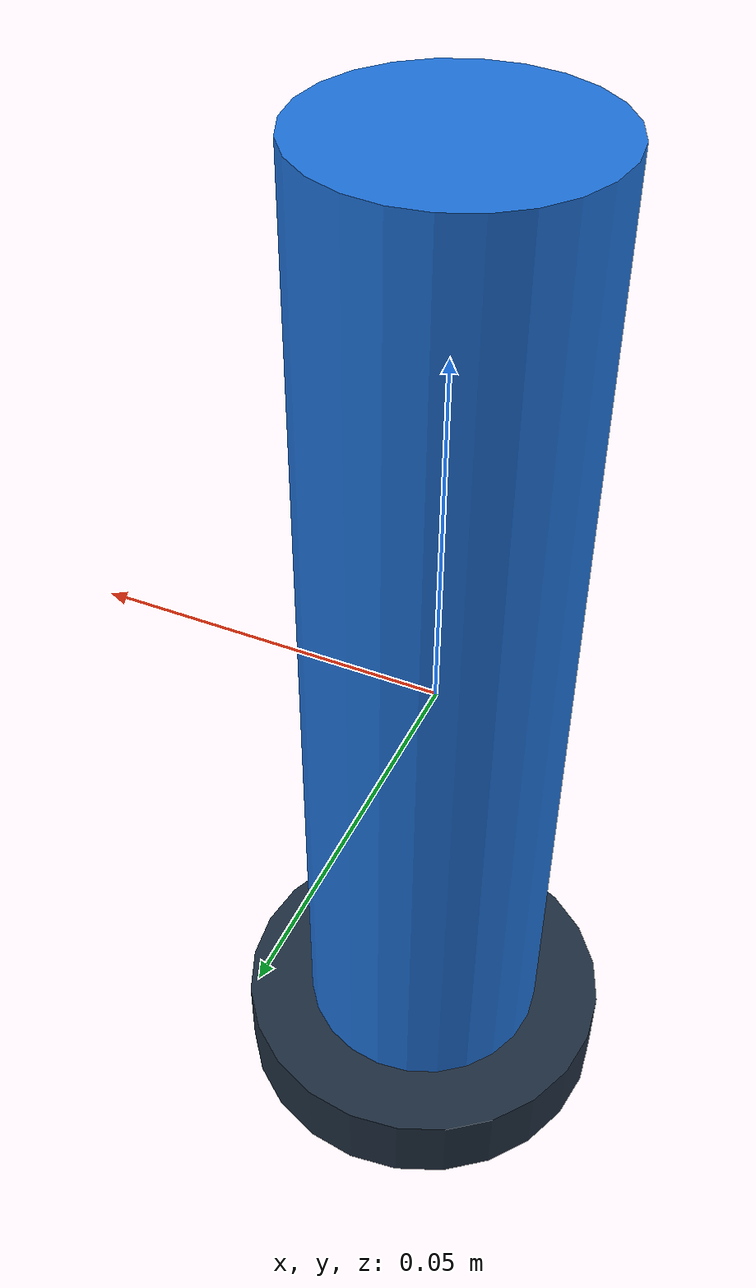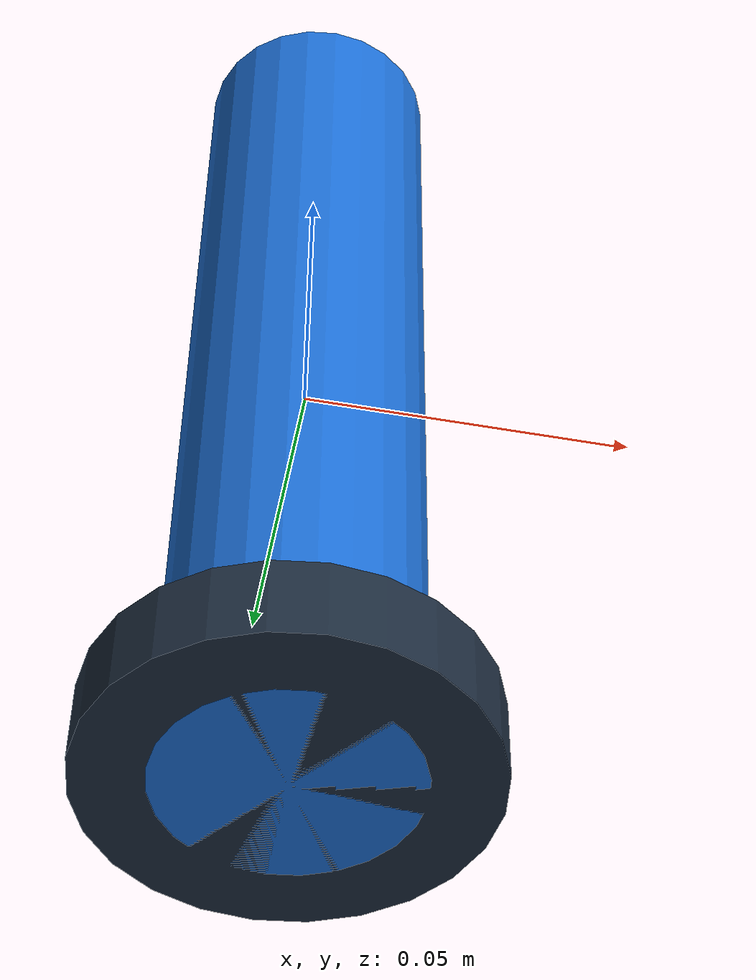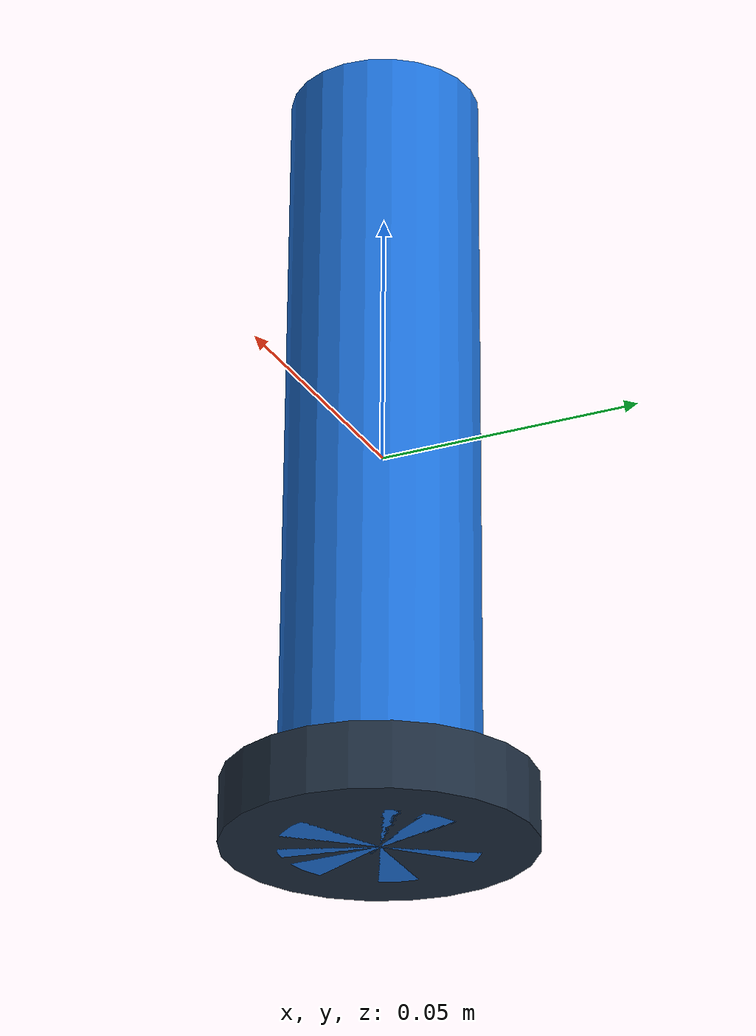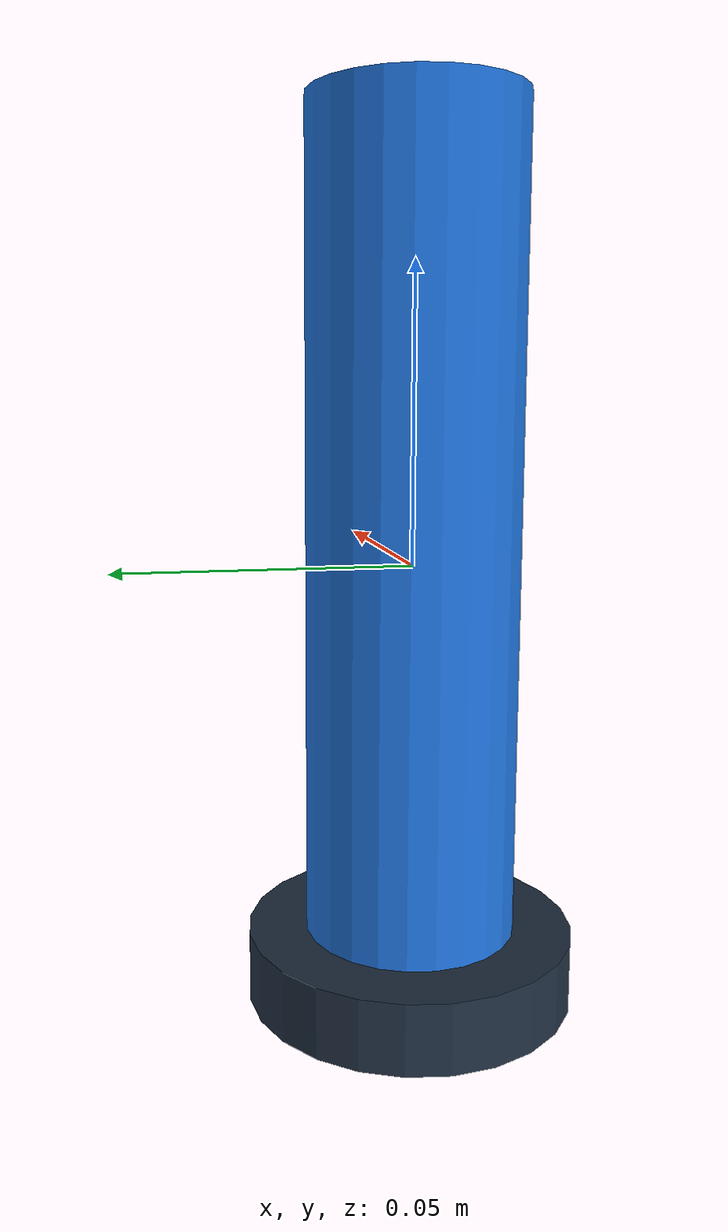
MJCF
<mujoco model="l1b_held_bollard">
  <worldbody>
    <body>
      <body name="object">
        <!-- LIBERO policy cameras render visual group 1. Keep these geoms
             non-colliding so appearance does not duplicate contact mass. -->
        <geom name="bollard_visual" type="cylinder" pos="0 0 0"
              size="0.018 0.075" contype="0" conaffinity="0"
              rgba="0.12 0.45 0.86 1" group="1"/>
        <geom name="bollard_base_visual" type="cylinder" pos="0 0 -0.069"
              size="0.028 0.006" contype="0" conaffinity="0"
              rgba="0.12 0.18 0.25 1" group="1"/>
        <geom name="bollard_collision" type="cylinder" pos="0 0 0"
              size="0.018 0.075" density="220" friction="0.95 0.3 0.1"
              rgba="0.12 0.45 0.86 1" group="0"/>
        <geom name="bollard_base" type="cylinder" pos="0 0 -0.069"
              size="0.028 0.006" density="500" friction="1.2 0.3 0.1"
              rgba="0.12 0.18 0.25 1" group="0"/>
      </body>
      <site rgba="0 0 0 0" size="0.005" pos="0 0 -0.075" name="bottom_site"/>
      <site rgba="0 0 0 0" size="0.005" pos="0 0 0.075" name="top_site"/>
      <site rgba="0 0 0 0" size="0.005" pos="0.028 0 0" name="horizontal_radius_site"/>
    </body>
  </worldbody>
</mujoco>
